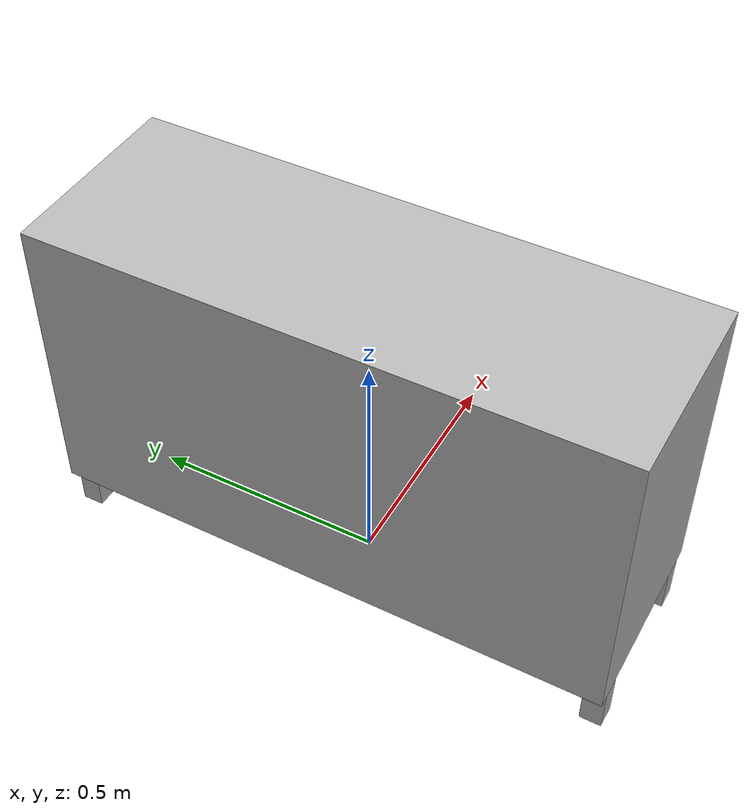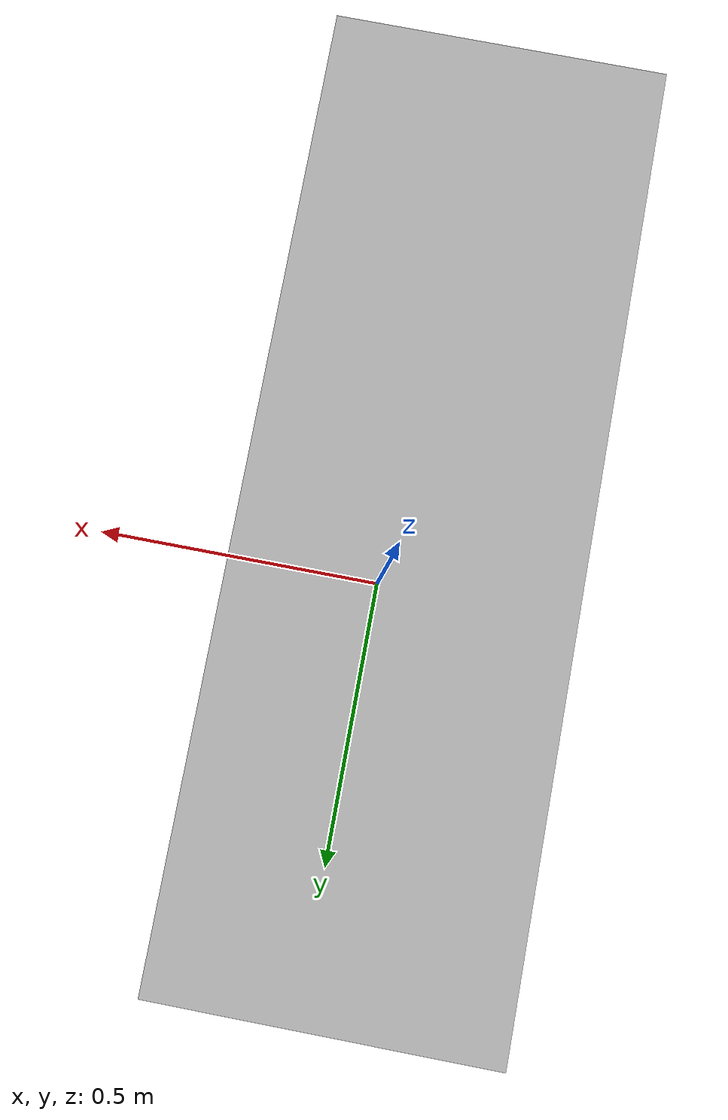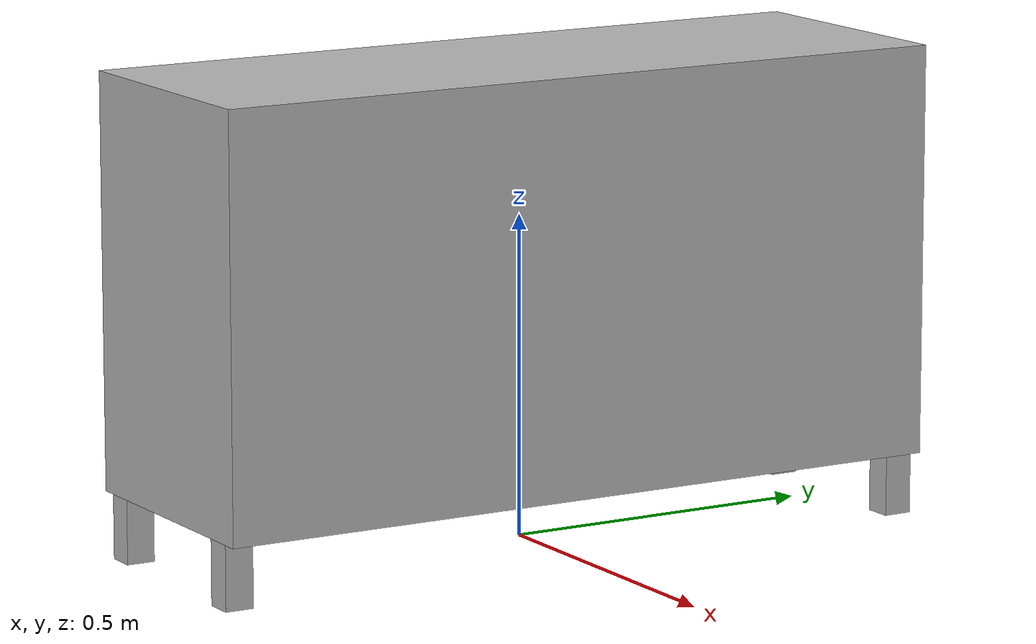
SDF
<?xml version="1.0" ?>
<sdf version="1.6">
  <model name="rwc2024/tv_table">
    <static>true</static>
    <link name="1_link">
      <collision name="1_col">
        <geometry>
          <box>
            <size>0.415 1.2 0.64</size>
          </box>
        </geometry>
      </collision>
      <visual name="1_vis">
        <geometry>
          <box>
            <size>0.415 1.2 0.64</size>
          </box>
        </geometry>
      </visual>
      <pose>0.0 0.0 0.42 0 0 0</pose>
    </link>
    <link name="2_link">
      <collision name="2_col">
        <geometry>
          <box>
            <size>0.045 0.045 0.1</size>
          </box>
        </geometry>
      </collision>
      <visual name="2_vis">
        <geometry>
          <box>
            <size>0.045 0.045 0.1</size>
          </box>
        </geometry>
      </visual>
      <pose>-0.16 -0.5775 0.05 0 0 0</pose>
    </link>
    <link name="3_link">
      <collision name="3_col">
        <geometry>
          <box>
            <size>0.045 0.045 0.1</size>
          </box>
        </geometry>
      </collision>
      <visual name="3_vis">
        <geometry>
          <box>
            <size>0.045 0.045 0.1</size>
          </box>
        </geometry>
      </visual>
      <pose>0.16 -0.5775 0.05 0 0 0</pose>
    </link>
    <link name="4_link">
      <collision name="4_col">
        <geometry>
          <box>
            <size>0.045 0.045 0.1</size>
          </box>
        </geometry>
      </collision>
      <visual name="4_vis">
        <geometry>
          <box>
            <size>0.045 0.045 0.1</size>
          </box>
        </geometry>
      </visual>
      <pose>-0.16 0.5775 0.05 0 0 0</pose>
    </link>
    <link name="5_link">
      <collision name="5_col">
        <geometry>
          <box>
            <size>0.045 0.045 0.1</size>
          </box>
        </geometry>
      </collision>
      <visual name="5_vis">
        <geometry>
          <box>
            <size>0.045 0.045 0.1</size>
          </box>
        </geometry>
      </visual>
      <pose>0.16 0.5775 0.05 0 0 0</pose>
    </link>
    <link name="on_top_of">
      <virtual_volume name="on_top_of_vv">
        <geometry>
          <box>
            <size>0.395 1.14 0.25</size>
          </box>
        </geometry>
        <pose>0.0 0.0 0.885 0 0 0</pose>
      </virtual_volume>
    </link>
    <link name="in_front_of">
      <virtual_volume name="in_front_of_vv">
        <geometry>
          <box>
            <size>0.2 1.0 0.01</size>
          </box>
        </geometry>
        <pose>0.7075 0.0 0.005 0 0 0</pose>
      </virtual_volume>
    </link>
  </model>
</sdf>
